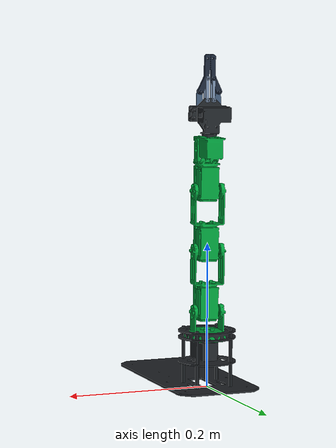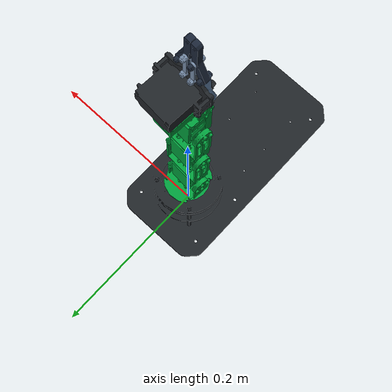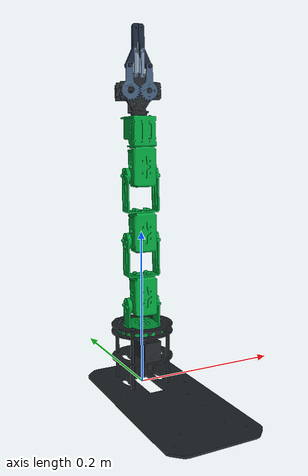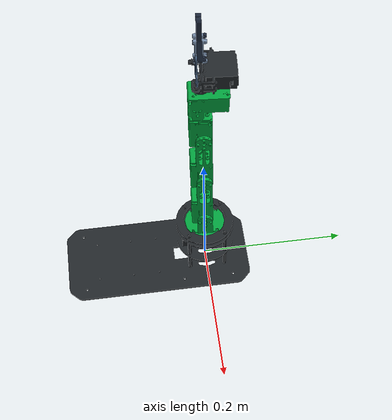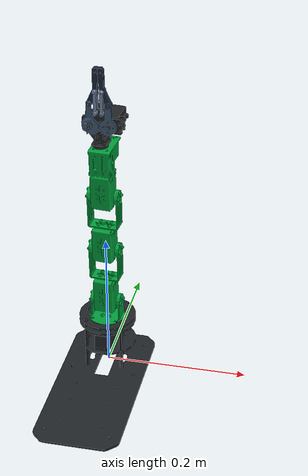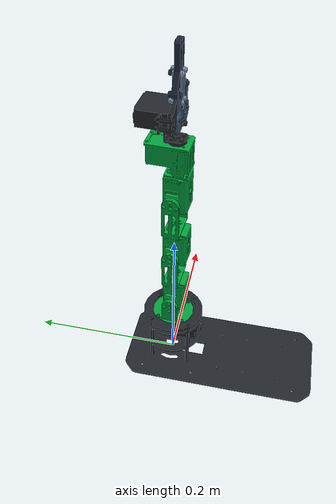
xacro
<?xml version="1.0" ?>
<!-- |    This document was autogenerated by xacro from src/mujoco_ros2_pkg/urdf/dofbot_trajectory_controller.xacro | -->
<!-- |    EDITING THIS FILE BY HAND IS NOT RECOMMENDED                                 | -->
<robot name="dofbot_trajectory_controller">
  <!--Material definition-->
  <material name="eerie_black">
    <color rgba="0.1294117647058824 0.1450980392156863 0.1607843137254902 1.0"/>
  </material>
  <material name="pigment_green">
    <color rgba="0 0.627450980392157 0.235294117647059 1.0"/>
  </material>
  <material name="oxford_blue">
    <color rgba="0.1058823529411765 0.1490196078431373 0.2196078431372549 1.0"/>
  </material>
  <material name="yinmn_blue">
    <color rgba="0.2549019607843137 0.3529411764705882 0.4666666666666667 1.0"/>
  </material>
  <material name="silver_lake_blue">
    <color rgba="0.4666666666666667 0.5529411764705882 0.6627450980392157 1.0"/>
  </material>
  <link name="arm_base_link">
    <visual>
      <origin rpy="0.0 0.0 0.0" xyz="0.0 0.0 0.0"/>
      <geometry>
        <mesh filename="package://mujoco_ros2_pkg/meshes/low_poly/dofbot/visual/base_link_low_poly.stl"/>
      </geometry>
      <material name="eerie_black"/>
    </visual>
    <collision>
      <origin rpy="0.0 0.0 0.0" xyz="0.0 0.0 0.0"/>
      <geometry>
        <mesh filename="package://mujoco_ros2_pkg/meshes/low_poly/dofbot/visual/base_link_low_poly.stl"/>
      </geometry>
    </collision>
    <inertial>
      <origin rpy="0 0 0" xyz="-0.0304416859098744 4.23384368655101E-05 0.0448234503408059"/>
      <mass value="1.0754239466482"/>
      <inertia ixx="0.0208831789264125" ixy="2.4618093127858E-06" ixz="0.00616019290028669" iyy="0.0265621377486244" iyz="-1.10079499865282E-06" izz="0.0129535610833954"/>
    </inertial>
  </link>
  <!-- Dofbot Arm Link 01 -->
  <link name="arm_link_01">
    <inertial>
      <origin rpy="0 0 0" xyz="1.99179507982521E-05 -5.98354652829568E-05 0.0114289358828097"/>
      <mass value="0.0279545499871709"/>
      <inertia ixx="1.19144359314975E-05" ixy="-9.26068510046816E-09" ixz="3.16060516198683E-09" iyy="1.05642517915377E-05" iyz="2.69674403668579E-08" izz="1.49639510661413E-05"/>
    </inertial>
    <visual>
      <origin rpy="0 0 0" xyz="0 0 0"/>
      <geometry>
        <mesh filename="package://mujoco_ros2_pkg/meshes/low_poly/dofbot/visual/arm_link1_low_poly.stl"/>
      </geometry>
      <material name="pigment_green"/>
    </visual>
    <collision>
      <origin rpy="0 0 0" xyz="0 0 0"/>
      <geometry>
        <mesh filename="package://mujoco_ros2_pkg/meshes/low_poly/dofbot/visual/arm_link1_low_poly.stl"/>
      </geometry>
    </collision>
  </link>
  <!-- Dofbot Arm Joint 01 (base_link -> arm_link_01) -->
  <joint name="arm_joint_01" type="revolute">
    <origin rpy="-0.010805 0 1.5" xyz="0 0 0.06605"/>
    <parent link="arm_base_link"/>
    <child link="arm_link_01"/>
    <axis xyz="0 0 1"/>
    <limit effort="30" lower="-1.5708" upper="1.5708" velocity="1.0"/>
  </joint>
  <!-- Dofbot Arm Link 02 -->
  <link name="arm_link_02">
    <inertial>
      <origin rpy="0 0 0" xyz="0.024903 -0.0022632 -0.00066663"/>
      <mass value="0.031605"/>
      <inertia ixx="5.8495E-06" ixy="-8.8092E-07" ixz="1.5336E-07" iyy="2.667E-05" iyz="7.1365E-09" izz="2.4695E-05"/>
    </inertial>
    <visual>
      <origin rpy="0 0 0" xyz="0 0 0"/>
      <geometry>
        <mesh filename="package://mujoco_ros2_pkg/meshes/low_poly/dofbot/visual/arm_link2_low_poly.stl"/>
      </geometry>
      <material name="pigment_green"/>
    </visual>
    <collision>
      <origin rpy="0 0 0" xyz="0 0 0"/>
      <geometry>
        <mesh filename="package://mujoco_ros2_pkg/meshes/low_poly/dofbot/visual/arm_link2_low_poly.stl"/>
      </geometry>
    </collision>
  </link>
  <!-- Dofbot Arm Joint 02 (arm_link_01 -> arm_link_02) -->
  <joint name="arm_joint_02" type="revolute">
    <origin rpy="-1.5708 0 0" xyz="0 0 0.0405"/>
    <parent link="arm_link_01"/>
    <child link="arm_link_02"/>
    <axis xyz="0 0 -1"/>
    <limit effort="100" lower="-1.5708" upper="1.5708" velocity="1"/>
  </joint>
  <!-- Dofbot Arm Link 03 -->
  <link name="arm_link_03">
    <inertial>
      <origin rpy="0 0 0" xyz="0.024903 -0.0022634 -0.0013962"/>
      <mass value="0.031605"/>
      <inertia ixx="5.8492E-06" ixy="-8.8063E-07" ixz="1.4331E-07" iyy="2.667E-05" iyz="8.9675E-09" izz="2.4695E-05"/>
    </inertial>
    <visual>
      <origin rpy="0 0 0" xyz="0 0 0"/>
      <geometry>
        <mesh filename="package://mujoco_ros2_pkg/meshes/low_poly/dofbot/visual/arm_link3_low_poly.stl"/>
      </geometry>
      <material name="pigment_green"/>
    </visual>
    <collision>
      <origin rpy="0 0 0" xyz="0 0 0"/>
      <geometry>
        <mesh filename="package://mujoco_ros2_pkg/meshes/low_poly/dofbot/visual/arm_link3_low_poly.stl"/>
      </geometry>
    </collision>
  </link>
  <!-- Dofbot Arm Joint 03 (arm_link_02 -> arm_link_03) -->
  <joint name="arm_joint_03" type="revolute">
    <origin rpy="0 0 0" xyz="0 -0.0829 0"/>
    <parent link="arm_link_02"/>
    <child link="arm_link_03"/>
    <axis xyz="0 0 -1"/>
    <limit effort="100" lower="-1.5708" upper="1.5708" velocity="1"/>
  </joint>
  <!-- Dofbot Arm Link 04 -->
  <link name="arm_link_04">
    <inertial>
      <origin rpy="0 0 0" xyz="0.036246 0.0023413 -0.0019655"/>
      <mass value="0.049766"/>
      <inertia ixx="1.1857E-05" ixy="-6.5371E-06" ixz="-4.1044E-08" iyy="3.6323E-05" iyz="-1.2132E-07" izz="4.1769E-05"/>
    </inertial>
    <visual>
      <origin rpy="0 0 0" xyz="0 0 0"/>
      <geometry>
        <mesh filename="package://mujoco_ros2_pkg/meshes/low_poly/dofbot/visual/arm_link4_low_poly.stl"/>
      </geometry>
      <material name="pigment_green"/>
    </visual>
    <collision>
      <origin rpy="0 0 0" xyz="0 0 0"/>
      <geometry>
        <mesh filename="package://mujoco_ros2_pkg/meshes/low_poly/dofbot/visual/arm_link4_low_poly.stl"/>
      </geometry>
    </collision>
  </link>
  <!-- Dofbot Arm Joint 04 (arm_link_03 -> arm_link_04) -->
  <joint name="arm_joint_04" type="revolute">
    <origin rpy="0 0 0" xyz="0 -0.0829 0"/>
    <parent link="arm_link_03"/>
    <child link="arm_link_04"/>
    <axis xyz="0 0 -1"/>
    <limit effort="100" lower="-1.5708" upper="1.5708" velocity="1"/>
  </joint>
  <!-- Dofbot Arm Link 05 -->
  <link name="arm_link_05">
    <inertial>
      <origin rpy="0 0 0" xyz="0.0023228 0.018169 0.028684"/>
      <mass value="0.04069"/>
      <inertia ixx="1.0627E-05" ixy="-3.0402E-07" ixz="-1.9524E-07" iyy="9.6306E-06" iyz="-1.3265E-06" izz="1.3298E-05"/>
    </inertial>
    <visual>
      <origin rpy="0 0 0" xyz="0 0 0"/>
      <geometry>
        <mesh filename="package://mujoco_ros2_pkg/meshes/low_poly/dofbot/visual/arm_link5_low_poly.stl"/>
      </geometry>
      <material name="eerie_black"/>
    </visual>
    <collision>
      <origin rpy="0 0 0" xyz="0 0 0"/>
      <geometry>
        <mesh filename="package://mujoco_ros2_pkg/meshes/low_poly/dofbot/visual/arm_link5_low_poly.stl"/>
      </geometry>
    </collision>
  </link>
  <!-- Dofbot Arm Joint 05 (arm_link_04 -> arm_link_05) -->
  <joint name="arm_joint_05" type="revolute">
    <origin rpy="1.5708 0 0" xyz="-0.00215 -0.17455 0"/>
    <parent link="arm_link_04"/>
    <child link="arm_link_05"/>
    <axis xyz="0 0 1"/>
    <limit effort="100" lower="-1.5708" upper="3.14159" velocity="1"/>
  </joint>
  <!-- Dofbot Arm Gripper Assembly-->
  <!-- Dofbot Arm Gripper Right Grip finger link 01 -->
  <link name="rgrip_finger01">
    <inertial>
      <origin rpy="0 0 0" xyz="0.00653227489887718 0.000416767821288678 0.000980984132845697"/>
      <mass value="0.00117883201961805"/>
      <inertia ixx="3.30415008842026E-08" ixy="8.05114594599862E-09" ixz="-1.46441757999184E-10" iyy="1.67254031134004E-07" iyz="-9.31932225400159E-12" izz="1.99277285249309E-07"/>
    </inertial>
    <visual>
      <origin rpy="0 0 0" xyz="0 0 0"/>
      <geometry>
        <mesh filename="package://mujoco_ros2_pkg/meshes/low_poly/dofbot/visual/rgrip_finger1_low_poly.stl"/>
      </geometry>
      <material name="yinmn_blue"/>
    </visual>
    <collision>
      <origin rpy="0 0 0" xyz="0 0 0"/>
      <geometry>
        <mesh filename="package://mujoco_ros2_pkg/meshes/low_poly/dofbot/visual/rgrip_finger1_low_poly.stl"/>
      </geometry>
    </collision>
  </link>
  <!-- Dofbot Arm Gripper Gripper Joint 01 (arm_link_05 -> rgrip_finger01) -->
  <!-- 'gripper_joint' is a mandatory MoveIt's name -->
  <joint name="grip_joint" type="revolute">
    <origin rpy="0 -1.5708 0" xyz="-0.0035 -0.012625 -0.0685"/>
    <parent link="arm_link_05"/>
    <child link="rgrip_finger01"/>
    <axis xyz="0 0 1"/>
    <limit effort="100" lower="-1.54" upper="0" velocity="1"/>
  </joint>
  <!-- Dofbot Arm Gripper Right Grip finger link 02 -->
  <link name="rgrip_finger02">
    <inertial>
      <origin rpy="0 0 0" xyz="0.021158 0.0063295 -0.0030251"/>
      <mass value="0.0024469"/>
      <inertia ixx="5.188E-08" ixy="-1.2303E-07" ixz="-1.2978E-09" iyy="6.3204E-07" iyz="-3.8824E-10" izz="6.6364E-07"/>
    </inertial>
    <visual>
      <origin rpy="0 0 0" xyz="0 0 0"/>
      <geometry>
        <mesh filename="package://mujoco_ros2_pkg/meshes/low_poly/dofbot/visual/rgrip_finger2_low_poly.stl"/>
      </geometry>
      <material name="oxford_blue"/>
    </visual>
    <collision>
      <origin rpy="0 0 0" xyz="0 0 0"/>
      <geometry>
        <mesh filename="package://mujoco_ros2_pkg/meshes/low_poly/dofbot/visual/rgrip_finger2_low_poly.stl"/>
      </geometry>
    </collision>
  </link>
  <!-- Dofbot Arm Gripper Right finger Joint 01 (rgrip_finger01 -> rgrip_finger02) -->
  <!-- 'mimic_joint' -->
  <joint name="rfinger_joint_01" type="continuous">
    <origin rpy="0 0 0" xyz="0.03 -0.00075429 0"/>
    <parent link="rgrip_finger01"/>
    <child link="rgrip_finger02"/>
    <axis xyz="0 0 1"/>
    <mimic joint="grip_joint" multiplier="-1"/>
  </joint>
  <!-- Dofbot Arm Gripper Right Grip finger link 03 -->
  <link name="rgrip_finger03">
    <inertial>
      <origin rpy="0 0 0" xyz="0.014355 1.1499E-05 -0.0033992"/>
      <mass value="0.00087627"/>
      <inertia ixx="2.0534E-08" ixy="-1.0235E-10" ixz="1.074E-09" iyy="1.4825E-07" iyz="8.7073E-13" izz="1.3089E-07"/>
    </inertial>
    <visual>
      <origin rpy="0 0 0" xyz="0 0 0"/>
      <geometry>
        <mesh filename="package://mujoco_ros2_pkg/meshes/low_poly/dofbot/visual/rgrip_finger3_low_poly.stl"/>
      </geometry>
      <material name="silver_lake_blue"/>
    </visual>
    <collision>
      <origin rpy="0 0 0" xyz="0 0 0"/>
      <geometry>
        <mesh filename="package://mujoco_ros2_pkg/meshes/low_poly/dofbot/visual/rgrip_finger3_low_poly.stl"/>
      </geometry>
    </collision>
  </link>
  <!-- Dofbot Arm Gripper Right finger Joint 02 (arm_link_05 -> rgrip_finger03) -->
  <!-- 'mimic_joint' -->
  <joint name="rfinger_joint_02" type="continuous">
    <origin rpy="0 -1.5708 0" xyz="-0.0035 -0.0045 -0.0505"/>
    <parent link="arm_link_05"/>
    <child link="rgrip_finger03"/>
    <axis xyz="0 0 1"/>
    <mimic joint="grip_joint" multiplier="1"/>
  </joint>
  <!-- Dofbot Arm Gripper Left Grip finger link 01 -->
  <link name="lgrip_finger01">
    <inertial>
      <origin rpy="0 0 0" xyz="0.00628617364795481 -0.000318530407893543 0.00100000338924466"/>
      <mass value="0.00121010771282268"/>
      <inertia ixx="3.18226609060835E-08" ixy="-8.06236004452728E-09" ixz="3.99064856025629E-14" iyy="1.69267681405915E-07" iyz="1.87039773440675E-14" izz="2.00283878176223E-07"/>
    </inertial>
    <visual>
      <origin rpy="0 0 0" xyz="0 0 0"/>
      <geometry>
        <mesh filename="package://mujoco_ros2_pkg/meshes/low_poly/dofbot/visual/lgrip_finger1_low_poly.stl"/>
      </geometry>
      <material name="yinmn_blue"/>
    </visual>
    <collision>
      <origin rpy="0 0 0" xyz="0 0 0"/>
      <geometry>
        <mesh filename="package://mujoco_ros2_pkg/meshes/low_poly/dofbot/visual/lgrip_finger1_low_poly.stl"/>
      </geometry>
    </collision>
  </link>
  <!-- Dofbot Arm Gripper Left finger grip joint 01 (arm_link_05 -> lgrip_finger01) -->
  <!-- 'mimic_joint' -->
  <joint name="lfinger_grip_joint_01" type="continuous">
    <origin rpy="0 -1.5708 0" xyz="-0.0035 0.012375 -0.0685"/>
    <parent link="arm_link_05"/>
    <child link="lgrip_finger01"/>
    <axis xyz="0 0 1"/>
    <mimic joint="grip_joint" multiplier="-1"/>
  </joint>
  <!-- Dofbot Arm Gripper Left Grip finger link 02 -->
  <link name="lgrip_finger02">
    <inertial>
      <origin rpy="0 0 0" xyz="0.021159 -0.0063248 -0.0030251"/>
      <mass value="0.0024469"/>
      <inertia ixx="5.1826E-08" ixy="1.229E-07" ixz="-1.2979E-09" iyy="6.321E-07" iyz="3.8796E-10" izz="6.6364E-07"/>
    </inertial>
    <visual>
      <origin rpy="0 0 0" xyz="0 0 0"/>
      <geometry>
        <mesh filename="package://mujoco_ros2_pkg/meshes/low_poly/dofbot/visual/lgrip_finger2_low_poly.stl"/>
      </geometry>
      <material name="oxford_blue"/>
    </visual>
    <collision>
      <origin rpy="0 0 0" xyz="0 0 0"/>
      <geometry>
        <mesh filename="package://mujoco_ros2_pkg/meshes/low_poly/dofbot/visual/lgrip_finger2_low_poly.stl"/>
      </geometry>
    </collision>
  </link>
  <!-- Dofbot Arm Gripper Left finger grip joint 02 (lgrip_finger01 -> lgrip_finger02) -->
  <!-- 'mimic_joint' -->
  <joint name="lfinger_grip_joint_02" type="continuous">
    <origin rpy="0 0 0" xyz="0.03 0.00065104 0"/>
    <parent link="lgrip_finger01"/>
    <child link="lgrip_finger02"/>
    <axis xyz="0 0 1"/>
    <mimic joint="grip_joint" multiplier="1"/>
  </joint>
  <!-- Dofbot Arm Gripper Left Grip finger link 03 -->
  <link name="lgrip_finger03">
    <inertial>
      <origin rpy="0 0 0" xyz="0.014354 -7.4795E-05 -0.0033992"/>
      <mass value="0.00087627"/>
      <inertia ixx="2.0537E-08" ixy="6.6549E-10" ixz="1.074E-09" iyy="1.4825E-07" iyz="-5.5867E-12" izz="1.3089E-07"/>
    </inertial>
    <visual>
      <origin rpy="0 0 0" xyz="0 0 0"/>
      <geometry>
        <mesh filename="package://mujoco_ros2_pkg/meshes/low_poly/dofbot/visual/lgrip_finger3_low_poly.stl"/>
      </geometry>
      <material name="silver_lake_blue"/>
    </visual>
    <collision>
      <origin rpy="0 0 0" xyz="0 0 0"/>
      <geometry>
        <mesh filename="package://mujoco_ros2_pkg/meshes/low_poly/dofbot/visual/lgrip_finger3_low_poly.stl"/>
      </geometry>
    </collision>
  </link>
  <!-- Dofbot Arm Gripper Left finger grip joint 03 (arm_link_05 -> lgrip_finger03) -->
  <!-- 'mimic_joint' -->
  <joint name="lfinger_grip_joint_03" type="continuous">
    <origin rpy="0 -1.5708 0" xyz="-0.0035 0.0045 -0.0505"/>
    <parent link="arm_link_05"/>
    <child link="lgrip_finger03"/>
    <axis xyz="0 0 1"/>
    <mimic joint="grip_joint" multiplier="-1"/>
  </joint>
  <ros2_control name="MujocoSystem" type="system">
    <hardware>
      <plugin>mujoco_ros2_control/MujocoSystem</plugin>
    </hardware>
    <joint name="arm_joint_01">
      <command_interface name="position"/>
      <state_interface name="position">
        <param name="initial_value">0.0</param>
      </state_interface>
      <state_interface name="velocity"/>
      <state_interface name="effort"/>
    </joint>
    <joint name="arm_joint_02">
      <command_interface name="position"/>
      <state_interface name="position">
        <param name="initial_value">0.0</param>
      </state_interface>
      <state_interface name="velocity"/>
      <state_interface name="effort"/>
    </joint>
    <joint name="arm_joint_03">
      <command_interface name="position"/>
      <state_interface name="position">
        <param name="initial_value">0.0</param>
      </state_interface>
      <state_interface name="velocity"/>
      <state_interface name="effort"/>
    </joint>
    <joint name="arm_base_link">
      <command_interface name="position"/>
      <state_interface name="position">
        <param name="initial_value">1.0</param>
      </state_interface>
      <state_interface name="velocity"/>
      <state_interface name="effort"/>
    </joint>
  </ros2_control>
</robot>
